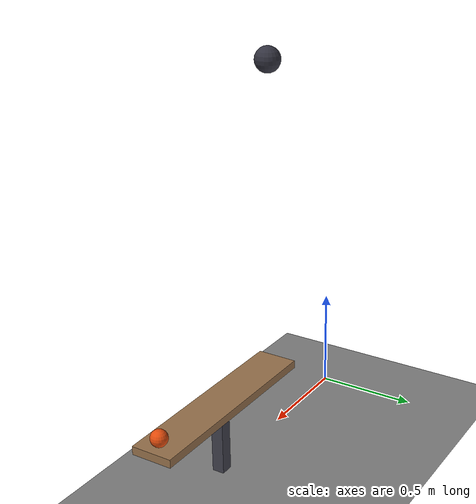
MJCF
<mujoco model="seesaw_throw">
  <compiler angle="radian"/>
  <option timestep="0.002"/>
  <worldbody>
    <geom name="floor" type="plane" size="6 6 0.1" friction="0.8 0.005 0.002"/>
    <body name="stand">
      <geom name="stand" type="box" pos="1 0 0.15" size="0.03 0.03 0.15" rgba="0.25 0.25 0.3 1"/>
    </body>
    <body name="seesaw" pos="1 0 0.35">
      <joint name="seesaw_hinge" type="hinge" pos="0 0 0" axis="0 1 0" limited="true" range="-0.436332 0" damping="0.02"/>
      <geom name="seesaw" type="box" pos="0 0 0" size="0.5 0.1 0.02" mass="0.3" friction="0.8 0.005 0.0001" rgba="0.6 0.45 0.3 1"/>
    </body>
    <body name="ball" pos="1.44 0 0.41">
      <freejoint/>
      <geom name="ball" type="sphere" pos="0 0 0" size="0.04" mass="0.1" condim="6" friction="0.8 0.01 0.004" rgba="0.9 0.3 0.05 1"/>
    </body>
    <body name="weight" pos="0.56 0 1.85">
      <freejoint/>
      <geom name="weight" type="sphere" pos="0 0 0" size="0.06" mass="1" solref="0.01 1" rgba="0.2 0.2 0.25 1"/>
    </body>
  </worldbody>
  <keyframe>
    <key name="start" qpos="0 1.44 0 0.41 1 0 0 0 0.56 0 1.85 1 0 0 0" qvel="0 0 0 0 0 0 0 0 0 0 0 0 0"/>
  </keyframe>
</mujoco>
